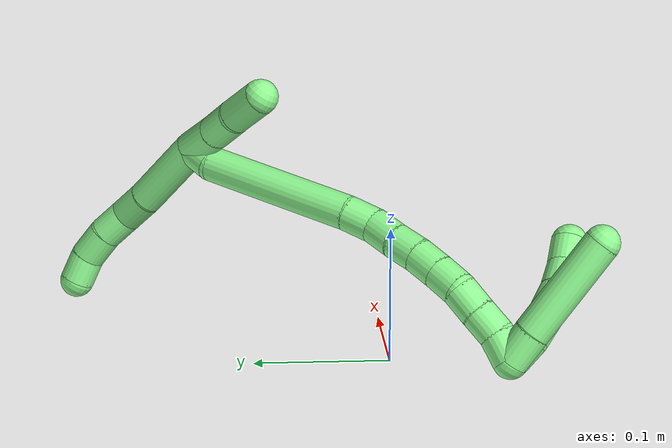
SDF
<sdf version="1.7">
 <world name="default">
  <model name="13">
   <static>0</static>
   <link name="13">
    <collision name="collision-cylinder-e_1_2_8">
     <pose>0.002651 0.008077 0.028337 -0.277677 0.089732 -0.012547</pose>
     <geometry><cylinder><radius>0.0125</radius><length>0.059169</length></cylinder></geometry>
     <surface>
      <friction><ode><mu>1.16</mu><mu2>1.16</mu2><slip1>0</slip1><slip2>0</slip2></ode></friction>
      <contact><ode><kp>1e+06</kp><kd>1</kd><max_vel>0</max_vel><min_depth>0.001</min_depth></ode></contact>
     </surface>
    </collision>
    <visual name="visual-cylinder-e_1_2_8">
     <pose>0.002651 0.008077 0.028337 -0.277677 0.089732 -0.012547</pose>
     <geometry><cylinder><radius>0.0125</radius><length>0.059169</length></cylinder></geometry>
     <material><ambient>0.564706 0.984314 0.572549 1</ambient></material>
    </visual>
    <collision name="collision-cylinder-e_2_8_9">
     <pose>0.0069 0.020777 0.068139 -0.383268 0.128565 -0.024977</pose>
     <geometry><cylinder><radius>0.0125</radius><length>0.02493</length></cylinder></geometry>
     <surface>
      <friction><ode><mu>1.16</mu><mu2>1.16</mu2><slip1>0</slip1><slip2>0</slip2></ode></friction>
      <contact><ode><kp>1e+06</kp><kd>1</kd><max_vel>0</max_vel><min_depth>0.001</min_depth></ode></contact>
     </surface>
    </collision>
    <visual name="visual-cylinder-e_2_8_9">
     <pose>0.0069 0.020777 0.068139 -0.383268 0.128565 -0.024977</pose>
     <geometry><cylinder><radius>0.0125</radius><length>0.02493</length></cylinder></geometry>
     <material><ambient>0.564706 0.984314 0.572549 1</ambient></material>
    </visual>
    <collision name="collision-cylinder-e_3_9_10">
     <pose>0.011029 0.026344 0.090285 -0.088188 0.231703 -0.010269</pose>
     <geometry><cylinder><radius>0.0125</radius><length>0.022036</length></cylinder></geometry>
     <surface>
      <friction><ode><mu>1.16</mu><mu2>1.16</mu2><slip1>0</slip1><slip2>0</slip2></ode></friction>
      <contact><ode><kp>1e+06</kp><kd>1</kd><max_vel>0</max_vel><min_depth>0.001</min_depth></ode></contact>
     </surface>
    </collision>
    <visual name="visual-cylinder-e_3_9_10">
     <pose>0.011029 0.026344 0.090285 -0.088188 0.231703 -0.010269</pose>
     <geometry><cylinder><radius>0.0125</radius><length>0.022036</length></cylinder></geometry>
     <material><ambient>0.564706 0.984314 0.572549 1</ambient></material>
    </visual>
    <collision name="collision-cylinder-e_4_10_11">
     <pose>0.014312 0.028295 0.112692 -0.085619 0.063923 -0.002739</pose>
     <geometry><cylinder><radius>0.0125</radius><length>0.023584</length></cylinder></geometry>
     <surface>
      <friction><ode><mu>1.16</mu><mu2>1.16</mu2><slip1>0</slip1><slip2>0</slip2></ode></friction>
      <contact><ode><kp>1e+06</kp><kd>1</kd><max_vel>0</max_vel><min_depth>0.001</min_depth></ode></contact>
     </surface>
    </collision>
    <visual name="visual-cylinder-e_4_10_11">
     <pose>0.014312 0.028295 0.112692 -0.085619 0.063923 -0.002739</pose>
     <geometry><cylinder><radius>0.0125</radius><length>0.023584</length></cylinder></geometry>
     <material><ambient>0.564706 0.984314 0.572549 1</ambient></material>
    </visual>
    <collision name="collision-cylinder-e_5_11_6">
     <pose>0.013706 0.02782 0.134356 0.147911 -0.134461 -0.009977</pose>
     <geometry><cylinder><radius>0.0125</radius><length>0.020281</length></cylinder></geometry>
     <surface>
      <friction><ode><mu>1.16</mu><mu2>1.16</mu2><slip1>0</slip1><slip2>0</slip2></ode></friction>
      <contact><ode><kp>1e+06</kp><kd>1</kd><max_vel>0</max_vel><min_depth>0.001</min_depth></ode></contact>
     </surface>
    </collision>
    <visual name="visual-cylinder-e_5_11_6">
     <pose>0.013706 0.02782 0.134356 0.147911 -0.134461 -0.009977</pose>
     <geometry><cylinder><radius>0.0125</radius><length>0.020281</length></cylinder></geometry>
     <material><ambient>0.564706 0.984314 0.572549 1</ambient></material>
    </visual>
    <collision name="collision-cylinder-e_1_2_12">
     <pose>-0.001047 -0.012938 -0.014124 2.39999 -0.054601 -0.140245</pose>
     <geometry><cylinder><radius>0.0125</radius><length>0.038366</length></cylinder></geometry>
     <surface>
      <friction><ode><mu>1.16</mu><mu2>1.16</mu2><slip1>0</slip1><slip2>0</slip2></ode></friction>
      <contact><ode><kp>1e+06</kp><kd>1</kd><max_vel>0</max_vel><min_depth>0.001</min_depth></ode></contact>
     </surface>
    </collision>
    <visual name="visual-cylinder-e_1_2_12">
     <pose>-0.001047 -0.012938 -0.014124 2.39999 -0.054601 -0.140245</pose>
     <geometry><cylinder><radius>0.0125</radius><length>0.038366</length></cylinder></geometry>
     <material><ambient>0.564706 0.984314 0.572549 1</ambient></material>
    </visual>
    <collision name="collision-cylinder-e_2_12_13">
     <pose>-0.002543 -0.036101 -0.039812 2.41755 -0.029068 -0.076721</pose>
     <geometry><cylinder><radius>0.0125</radius><length>0.030884</length></cylinder></geometry>
     <surface>
      <friction><ode><mu>1.16</mu><mu2>1.16</mu2><slip1>0</slip1><slip2>0</slip2></ode></friction>
      <contact><ode><kp>1e+06</kp><kd>1</kd><max_vel>0</max_vel><min_depth>0.001</min_depth></ode></contact>
     </surface>
    </collision>
    <visual name="visual-cylinder-e_2_12_13">
     <pose>-0.002543 -0.036101 -0.039812 2.41755 -0.029068 -0.076721</pose>
     <geometry><cylinder><radius>0.0125</radius><length>0.030884</length></cylinder></geometry>
     <material><ambient>0.564706 0.984314 0.572549 1</ambient></material>
    </visual>
    <collision name="collision-cylinder-e_3_13_5">
     <pose>-0.005058 -0.054106 -0.064474 2.60562 -0.134851 -0.482278</pose>
     <geometry><cylinder><radius>0.0125</radius><length>0.03075</length></cylinder></geometry>
     <surface>
      <friction><ode><mu>1.16</mu><mu2>1.16</mu2><slip1>0</slip1><slip2>0</slip2></ode></friction>
      <contact><ode><kp>1e+06</kp><kd>1</kd><max_vel>0</max_vel><min_depth>0.001</min_depth></ode></contact>
     </surface>
    </collision>
    <visual name="visual-cylinder-e_3_13_5">
     <pose>-0.005058 -0.054106 -0.064474 2.60562 -0.134851 -0.482278</pose>
     <geometry><cylinder><radius>0.0125</radius><length>0.03075</length></cylinder></geometry>
     <material><ambient>0.564706 0.984314 0.572549 1</ambient></material>
    </visual>
    <collision name="collision-cylinder-e_1_2_14">
     <pose>-0.007439 -0.008428 -0.001411 1.73673 -0.716341 -0.832727</pose>
     <geometry><cylinder><radius>0.0125</radius><length>0.02266</length></cylinder></geometry>
     <surface>
      <friction><ode><mu>1.16</mu><mu2>1.16</mu2><slip1>0</slip1><slip2>0</slip2></ode></friction>
      <contact><ode><kp>1e+06</kp><kd>1</kd><max_vel>0</max_vel><min_depth>0.001</min_depth></ode></contact>
     </surface>
    </collision>
    <visual name="visual-cylinder-e_1_2_14">
     <pose>-0.007439 -0.008428 -0.001411 1.73673 -0.716341 -0.832727</pose>
     <geometry><cylinder><radius>0.0125</radius><length>0.02266</length></cylinder></geometry>
     <material><ambient>0.564706 0.984314 0.572549 1</ambient></material>
    </visual>
    <collision name="collision-cylinder-e_2_14_15">
     <pose>-0.05781 -0.047879 -0.022508 2.13621 -0.862933 -1.39425</pose>
     <geometry><cylinder><radius>0.0125</radius><length>0.113013</length></cylinder></geometry>
     <surface>
      <friction><ode><mu>1.16</mu><mu2>1.16</mu2><slip1>0</slip1><slip2>0</slip2></ode></friction>
      <contact><ode><kp>1e+06</kp><kd>1</kd><max_vel>0</max_vel><min_depth>0.001</min_depth></ode></contact>
     </surface>
    </collision>
    <visual name="visual-cylinder-e_2_14_15">
     <pose>-0.05781 -0.047879 -0.022508 2.13621 -0.862933 -1.39425</pose>
     <geometry><cylinder><radius>0.0125</radius><length>0.113013</length></cylinder></geometry>
     <material><ambient>0.564706 0.984314 0.572549 1</ambient></material>
    </visual>
    <collision name="collision-cylinder-e_3_15_16">
     <pose>-0.109643 -0.084467 -0.044924 2.02716 -0.962472 -1.39505</pose>
     <geometry><cylinder><radius>0.0125</radius><length>0.021697</length></cylinder></geometry>
     <surface>
      <friction><ode><mu>1.16</mu><mu2>1.16</mu2><slip1>0</slip1><slip2>0</slip2></ode></friction>
      <contact><ode><kp>1e+06</kp><kd>1</kd><max_vel>0</max_vel><min_depth>0.001</min_depth></ode></contact>
     </surface>
    </collision>
    <visual name="visual-cylinder-e_3_15_16">
     <pose>-0.109643 -0.084467 -0.044924 2.02716 -0.962472 -1.39505</pose>
     <geometry><cylinder><radius>0.0125</radius><length>0.021697</length></cylinder></geometry>
     <material><ambient>0.564706 0.984314 0.572549 1</ambient></material>
    </visual>
    <collision name="collision-cylinder-e_4_16_17">
     <pose>-0.125507 -0.098329 -0.049428 1.78118 -0.687178 -0.83278</pose>
     <geometry><cylinder><radius>0.0125</radius><length>0.021948</length></cylinder></geometry>
     <surface>
      <friction><ode><mu>1.16</mu><mu2>1.16</mu2><slip1>0</slip1><slip2>0</slip2></ode></friction>
      <contact><ode><kp>1e+06</kp><kd>1</kd><max_vel>0</max_vel><min_depth>0.001</min_depth></ode></contact>
     </surface>
    </collision>
    <visual name="visual-cylinder-e_4_16_17">
     <pose>-0.125507 -0.098329 -0.049428 1.78118 -0.687178 -0.83278</pose>
     <geometry><cylinder><radius>0.0125</radius><length>0.021948</length></cylinder></geometry>
     <material><ambient>0.564706 0.984314 0.572549 1</ambient></material>
    </visual>
    <collision name="collision-cylinder-e_5_17_18">
     <pose>-0.139712 -0.113756 -0.053064 1.82653 -0.776708 -0.974497</pose>
     <geometry><cylinder><radius>0.0125</radius><length>0.020669</length></cylinder></geometry>
     <surface>
      <friction><ode><mu>1.16</mu><mu2>1.16</mu2><slip1>0</slip1><slip2>0</slip2></ode></friction>
      <contact><ode><kp>1e+06</kp><kd>1</kd><max_vel>0</max_vel><min_depth>0.001</min_depth></ode></contact>
     </surface>
    </collision>
    <visual name="visual-cylinder-e_5_17_18">
     <pose>-0.139712 -0.113756 -0.053064 1.82653 -0.776708 -0.974497</pose>
     <geometry><cylinder><radius>0.0125</radius><length>0.020669</length></cylinder></geometry>
     <material><ambient>0.564706 0.984314 0.572549 1</ambient></material>
    </visual>
    <collision name="collision-cylinder-e_6_18_19">
     <pose>-0.15401 -0.127923 -0.055822 1.69706 -0.782638 -0.875908</pose>
     <geometry><cylinder><radius>0.0125</radius><length>0.020006</length></cylinder></geometry>
     <surface>
      <friction><ode><mu>1.16</mu><mu2>1.16</mu2><slip1>0</slip1><slip2>0</slip2></ode></friction>
      <contact><ode><kp>1e+06</kp><kd>1</kd><max_vel>0</max_vel><min_depth>0.001</min_depth></ode></contact>
     </surface>
    </collision>
    <visual name="visual-cylinder-e_6_18_19">
     <pose>-0.15401 -0.127923 -0.055822 1.69706 -0.782638 -0.875908</pose>
     <geometry><cylinder><radius>0.0125</radius><length>0.020006</length></cylinder></geometry>
     <material><ambient>0.564706 0.984314 0.572549 1</ambient></material>
    </visual>
    <collision name="collision-cylinder-e_7_19_20">
     <pose>-0.168009 -0.142131 -0.057336 1.65716 -0.767545 -0.829456</pose>
     <geometry><cylinder><radius>0.0125</radius><length>0.020006</length></cylinder></geometry>
     <surface>
      <friction><ode><mu>1.16</mu><mu2>1.16</mu2><slip1>0</slip1><slip2>0</slip2></ode></friction>
      <contact><ode><kp>1e+06</kp><kd>1</kd><max_vel>0</max_vel><min_depth>0.001</min_depth></ode></contact>
     </surface>
    </collision>
    <visual name="visual-cylinder-e_7_19_20">
     <pose>-0.168009 -0.142131 -0.057336 1.65716 -0.767545 -0.829456</pose>
     <geometry><cylinder><radius>0.0125</radius><length>0.020006</length></cylinder></geometry>
     <material><ambient>0.564706 0.984314 0.572549 1</ambient></material>
    </visual>
    <collision name="collision-cylinder-e_8_20_21">
     <pose>-0.18318 -0.15467 -0.056073 1.23331 -0.965742 -0.711634</pose>
     <geometry><cylinder><radius>0.0125</radius><length>0.020001</length></cylinder></geometry>
     <surface>
      <friction><ode><mu>1.16</mu><mu2>1.16</mu2><slip1>0</slip1><slip2>0</slip2></ode></friction>
      <contact><ode><kp>1e+06</kp><kd>1</kd><max_vel>0</max_vel><min_depth>0.001</min_depth></ode></contact>
     </surface>
    </collision>
    <visual name="visual-cylinder-e_8_20_21">
     <pose>-0.18318 -0.15467 -0.056073 1.23331 -0.965742 -0.711634</pose>
     <geometry><cylinder><radius>0.0125</radius><length>0.020001</length></cylinder></geometry>
     <material><ambient>0.564706 0.984314 0.572549 1</ambient></material>
    </visual>
    <collision name="collision-cylinder-e_9_21_22">
     <pose>-0.199916 -0.164953 -0.052345 1.21171 -1.01798 -0.737778</pose>
     <geometry><cylinder><radius>0.0125</radius><length>0.02</length></cylinder></geometry>
     <surface>
      <friction><ode><mu>1.16</mu><mu2>1.16</mu2><slip1>0</slip1><slip2>0</slip2></ode></friction>
      <contact><ode><kp>1e+06</kp><kd>1</kd><max_vel>0</max_vel><min_depth>0.001</min_depth></ode></contact>
     </surface>
    </collision>
    <visual name="visual-cylinder-e_9_21_22">
     <pose>-0.199916 -0.164953 -0.052345 1.21171 -1.01798 -0.737778</pose>
     <geometry><cylinder><radius>0.0125</radius><length>0.02</length></cylinder></geometry>
     <material><ambient>0.564706 0.984314 0.572549 1</ambient></material>
    </visual>
    <collision name="collision-cylinder-e_10_22_1">
     <pose>-0.215734 -0.175602 -0.046794 0.997061 -0.819476 -0.464356</pose>
     <geometry><cylinder><radius>0.0125</radius><length>0.02</length></cylinder></geometry>
     <surface>
      <friction><ode><mu>1.16</mu><mu2>1.16</mu2><slip1>0</slip1><slip2>0</slip2></ode></friction>
      <contact><ode><kp>1e+06</kp><kd>1</kd><max_vel>0</max_vel><min_depth>0.001</min_depth></ode></contact>
     </surface>
    </collision>
    <visual name="visual-cylinder-e_10_22_1">
     <pose>-0.215734 -0.175602 -0.046794 0.997061 -0.819476 -0.464356</pose>
     <geometry><cylinder><radius>0.0125</radius><length>0.02</length></cylinder></geometry>
     <material><ambient>0.564706 0.984314 0.572549 1</ambient></material>
    </visual>
    <collision name="collision-cylinder-e_1_1_23">
     <pose>-0.223469 -0.180282 -0.055096 -3.05403 -0.03538 0.767627</pose>
     <geometry><cylinder><radius>0.0125</radius><length>0.02412</length></cylinder></geometry>
     <surface>
      <friction><ode><mu>1.16</mu><mu2>1.16</mu2><slip1>0</slip1><slip2>0</slip2></ode></friction>
      <contact><ode><kp>1e+06</kp><kd>1</kd><max_vel>0</max_vel><min_depth>0.001</min_depth></ode></contact>
     </surface>
    </collision>
    <visual name="visual-cylinder-e_1_1_23">
     <pose>-0.223469 -0.180282 -0.055096 -3.05403 -0.03538 0.767627</pose>
     <geometry><cylinder><radius>0.0125</radius><length>0.02412</length></cylinder></geometry>
     <material><ambient>0.564706 0.984314 0.572549 1</ambient></material>
    </visual>
    <collision name="collision-cylinder-e_2_23_4">
     <pose>-0.226958 -0.174166 -0.104578 -3.00734 -0.080807 1.08278</pose>
     <geometry><cylinder><radius>0.0125</radius><length>0.07588</length></cylinder></geometry>
     <surface>
      <friction><ode><mu>1.16</mu><mu2>1.16</mu2><slip1>0</slip1><slip2>0</slip2></ode></friction>
      <contact><ode><kp>1e+06</kp><kd>1</kd><max_vel>0</max_vel><min_depth>0.001</min_depth></ode></contact>
     </surface>
    </collision>
    <visual name="visual-cylinder-e_2_23_4">
     <pose>-0.226958 -0.174166 -0.104578 -3.00734 -0.080807 1.08278</pose>
     <geometry><cylinder><radius>0.0125</radius><length>0.07588</length></cylinder></geometry>
     <material><ambient>0.564706 0.984314 0.572549 1</ambient></material>
    </visual>
    <collision name="collision-cylinder-e_1_1_24">
     <pose>-0.22522 -0.178379 -0.052391 -2.8338 -0.219472 1.23517</pose>
     <geometry><cylinder><radius>0.0125</radius><length>0.02</length></cylinder></geometry>
     <surface>
      <friction><ode><mu>1.16</mu><mu2>1.16</mu2><slip1>0</slip1><slip2>0</slip2></ode></friction>
      <contact><ode><kp>1e+06</kp><kd>1</kd><max_vel>0</max_vel><min_depth>0.001</min_depth></ode></contact>
     </surface>
    </collision>
    <visual name="visual-cylinder-e_1_1_24">
     <pose>-0.22522 -0.178379 -0.052391 -2.8338 -0.219472 1.23517</pose>
     <geometry><cylinder><radius>0.0125</radius><length>0.02</length></cylinder></geometry>
     <material><ambient>0.564706 0.984314 0.572549 1</ambient></material>
    </visual>
    <collision name="collision-cylinder-e_2_24_25">
     <pose>-0.228884 -0.169689 -0.069749 -2.52316 -0.149317 0.45998</pose>
     <geometry><cylinder><radius>0.0125</radius><length>0.02</length></cylinder></geometry>
     <surface>
      <friction><ode><mu>1.16</mu><mu2>1.16</mu2><slip1>0</slip1><slip2>0</slip2></ode></friction>
      <contact><ode><kp>1e+06</kp><kd>1</kd><max_vel>0</max_vel><min_depth>0.001</min_depth></ode></contact>
     </surface>
    </collision>
    <visual name="visual-cylinder-e_2_24_25">
     <pose>-0.228884 -0.169689 -0.069749 -2.52316 -0.149317 0.45998</pose>
     <geometry><cylinder><radius>0.0125</radius><length>0.02</length></cylinder></geometry>
     <material><ambient>0.564706 0.984314 0.572549 1</ambient></material>
    </visual>
    <collision name="collision-cylinder-e_3_25_26">
     <pose>-0.230964 -0.15775 -0.085626 -2.47077 -0.059255 0.16963</pose>
     <geometry><cylinder><radius>0.0125</radius><length>0.02</length></cylinder></geometry>
     <surface>
      <friction><ode><mu>1.16</mu><mu2>1.16</mu2><slip1>0</slip1><slip2>0</slip2></ode></friction>
      <contact><ode><kp>1e+06</kp><kd>1</kd><max_vel>0</max_vel><min_depth>0.001</min_depth></ode></contact>
     </surface>
    </collision>
    <visual name="visual-cylinder-e_3_25_26">
     <pose>-0.230964 -0.15775 -0.085626 -2.47077 -0.059255 0.16963</pose>
     <geometry><cylinder><radius>0.0125</radius><length>0.02</length></cylinder></geometry>
     <material><ambient>0.564706 0.984314 0.572549 1</ambient></material>
    </visual>
    <collision name="collision-cylinder-e_4_26_27">
     <pose>-0.231889 -0.143214 -0.098967 -2.15618 -0.033274 0.061964</pose>
     <geometry><cylinder><radius>0.0125</radius><length>0.02</length></cylinder></geometry>
     <surface>
      <friction><ode><mu>1.16</mu><mu2>1.16</mu2><slip1>0</slip1><slip2>0</slip2></ode></friction>
      <contact><ode><kp>1e+06</kp><kd>1</kd><max_vel>0</max_vel><min_depth>0.001</min_depth></ode></contact>
     </surface>
    </collision>
    <visual name="visual-cylinder-e_4_26_27">
     <pose>-0.231889 -0.143214 -0.098967 -2.15618 -0.033274 0.061964</pose>
     <geometry><cylinder><radius>0.0125</radius><length>0.02</length></cylinder></geometry>
     <material><ambient>0.564706 0.984314 0.572549 1</ambient></material>
    </visual>
    <collision name="collision-cylinder-e_5_27_3">
     <pose>-0.231029 -0.127075 -0.110621 -2.23644 0.119555 -0.244939</pose>
     <geometry><cylinder><radius>0.0125</radius><length>0.02</length></cylinder></geometry>
     <surface>
      <friction><ode><mu>1.16</mu><mu2>1.16</mu2><slip1>0</slip1><slip2>0</slip2></ode></friction>
      <contact><ode><kp>1e+06</kp><kd>1</kd><max_vel>0</max_vel><min_depth>0.001</min_depth></ode></contact>
     </surface>
    </collision>
    <visual name="visual-cylinder-e_5_27_3">
     <pose>-0.231029 -0.127075 -0.110621 -2.23644 0.119555 -0.244939</pose>
     <geometry><cylinder><radius>0.0125</radius><length>0.02</length></cylinder></geometry>
     <material><ambient>0.564706 0.984314 0.572549 1</ambient></material>
    </visual>
    <collision name="collision-sphere-3">
     <pose>-0.229836 -0.119266 -0.116753 0 -0 0</pose>
     <geometry><sphere><radius>0.0125</radius></sphere></geometry>
     <surface>
      <friction><ode><mu>1.16</mu><mu2>1.16</mu2><slip1>0</slip1><slip2>0</slip2></ode></friction>
      <contact><ode><kp>1e+06</kp><kd>1</kd><max_vel>0</max_vel><min_depth>0.001</min_depth></ode></contact>
     </surface>
    </collision>
    <visual name="visual-sphere-3">
     <pose>-0.229836 -0.119266 -0.116753 0 -0 0</pose>
     <geometry><sphere><radius>0.0125</radius></sphere></geometry>
     <material><ambient>0.564706 0.984314 0.572549 1</ambient></material>
    </visual>
    <collision name="collision-sphere-27">
     <pose>-0.232222 -0.134884 -0.104489 0 -0 0</pose>
     <geometry><sphere><radius>0.0125</radius></sphere></geometry>
     <surface>
      <friction><ode><mu>1.16</mu><mu2>1.16</mu2><slip1>0</slip1><slip2>0</slip2></ode></friction>
      <contact><ode><kp>1e+06</kp><kd>1</kd><max_vel>0</max_vel><min_depth>0.001</min_depth></ode></contact>
     </surface>
    </collision>
    <visual name="visual-sphere-27">
     <pose>-0.232222 -0.134884 -0.104489 0 -0 0</pose>
     <geometry><sphere><radius>0.0125</radius></sphere></geometry>
     <material><ambient>0.564706 0.984314 0.572549 1</ambient></material>
    </visual>
    <collision name="collision-sphere-26">
     <pose>-0.231556 -0.151545 -0.093445 0 -0 0</pose>
     <geometry><sphere><radius>0.0125</radius></sphere></geometry>
     <surface>
      <friction><ode><mu>1.16</mu><mu2>1.16</mu2><slip1>0</slip1><slip2>0</slip2></ode></friction>
      <contact><ode><kp>1e+06</kp><kd>1</kd><max_vel>0</max_vel><min_depth>0.001</min_depth></ode></contact>
     </surface>
    </collision>
    <visual name="visual-sphere-26">
     <pose>-0.231556 -0.151545 -0.093445 0 -0 0</pose>
     <geometry><sphere><radius>0.0125</radius></sphere></geometry>
     <material><ambient>0.564706 0.984314 0.572549 1</ambient></material>
    </visual>
    <collision name="collision-sphere-25">
     <pose>-0.230372 -0.163956 -0.077807 0 -0 0</pose>
     <geometry><sphere><radius>0.0125</radius></sphere></geometry>
     <surface>
      <friction><ode><mu>1.16</mu><mu2>1.16</mu2><slip1>0</slip1><slip2>0</slip2></ode></friction>
      <contact><ode><kp>1e+06</kp><kd>1</kd><max_vel>0</max_vel><min_depth>0.001</min_depth></ode></contact>
     </surface>
    </collision>
    <visual name="visual-sphere-25">
     <pose>-0.230372 -0.163956 -0.077807 0 -0 0</pose>
     <geometry><sphere><radius>0.0125</radius></sphere></geometry>
     <material><ambient>0.564706 0.984314 0.572549 1</ambient></material>
    </visual>
    <collision name="collision-sphere-24">
     <pose>-0.227397 -0.175422 -0.061692 0 -0 0</pose>
     <geometry><sphere><radius>0.0125</radius></sphere></geometry>
     <surface>
      <friction><ode><mu>1.16</mu><mu2>1.16</mu2><slip1>0</slip1><slip2>0</slip2></ode></friction>
      <contact><ode><kp>1e+06</kp><kd>1</kd><max_vel>0</max_vel><min_depth>0.001</min_depth></ode></contact>
     </surface>
    </collision>
    <visual name="visual-sphere-24">
     <pose>-0.227397 -0.175422 -0.061692 0 -0 0</pose>
     <geometry><sphere><radius>0.0125</radius></sphere></geometry>
     <material><ambient>0.564706 0.984314 0.572549 1</ambient></material>
    </visual>
    <collision name="collision-sphere-4">
     <pose>-0.230021 -0.169104 -0.142054 0 -0 0</pose>
     <geometry><sphere><radius>0.0125</radius></sphere></geometry>
     <surface>
      <friction><ode><mu>1.16</mu><mu2>1.16</mu2><slip1>0</slip1><slip2>0</slip2></ode></friction>
      <contact><ode><kp>1e+06</kp><kd>1</kd><max_vel>0</max_vel><min_depth>0.001</min_depth></ode></contact>
     </surface>
    </collision>
    <visual name="visual-sphere-4">
     <pose>-0.230021 -0.169104 -0.142054 0 -0 0</pose>
     <geometry><sphere><radius>0.0125</radius></sphere></geometry>
     <material><ambient>0.564706 0.984314 0.572549 1</ambient></material>
    </visual>
    <collision name="collision-sphere-23">
     <pose>-0.223896 -0.179228 -0.067102 0 -0 0</pose>
     <geometry><sphere><radius>0.0125</radius></sphere></geometry>
     <surface>
      <friction><ode><mu>1.16</mu><mu2>1.16</mu2><slip1>0</slip1><slip2>0</slip2></ode></friction>
      <contact><ode><kp>1e+06</kp><kd>1</kd><max_vel>0</max_vel><min_depth>0.001</min_depth></ode></contact>
     </surface>
    </collision>
    <visual name="visual-sphere-23">
     <pose>-0.223896 -0.179228 -0.067102 0 -0 0</pose>
     <geometry><sphere><radius>0.0125</radius></sphere></geometry>
     <material><ambient>0.564706 0.984314 0.572549 1</ambient></material>
    </visual>
    <collision name="collision-sphere-1">
     <pose>-0.223042 -0.181335 -0.043089 0 -0 0</pose>
     <geometry><sphere><radius>0.0125</radius></sphere></geometry>
     <surface>
      <friction><ode><mu>1.16</mu><mu2>1.16</mu2><slip1>0</slip1><slip2>0</slip2></ode></friction>
      <contact><ode><kp>1e+06</kp><kd>1</kd><max_vel>0</max_vel><min_depth>0.001</min_depth></ode></contact>
     </surface>
    </collision>
    <visual name="visual-sphere-1">
     <pose>-0.223042 -0.181335 -0.043089 0 -0 0</pose>
     <geometry><sphere><radius>0.0125</radius></sphere></geometry>
     <material><ambient>0.564706 0.984314 0.572549 1</ambient></material>
    </visual>
    <collision name="collision-sphere-22">
     <pose>-0.208427 -0.169869 -0.050499 0 -0 0</pose>
     <geometry><sphere><radius>0.0125</radius></sphere></geometry>
     <surface>
      <friction><ode><mu>1.16</mu><mu2>1.16</mu2><slip1>0</slip1><slip2>0</slip2></ode></friction>
      <contact><ode><kp>1e+06</kp><kd>1</kd><max_vel>0</max_vel><min_depth>0.001</min_depth></ode></contact>
     </surface>
    </collision>
    <visual name="visual-sphere-22">
     <pose>-0.208427 -0.169869 -0.050499 0 -0 0</pose>
     <geometry><sphere><radius>0.0125</radius></sphere></geometry>
     <material><ambient>0.564706 0.984314 0.572549 1</ambient></material>
    </visual>
    <collision name="collision-sphere-21">
     <pose>-0.191406 -0.160037 -0.05419 0 -0 0</pose>
     <geometry><sphere><radius>0.0125</radius></sphere></geometry>
     <surface>
      <friction><ode><mu>1.16</mu><mu2>1.16</mu2><slip1>0</slip1><slip2>0</slip2></ode></friction>
      <contact><ode><kp>1e+06</kp><kd>1</kd><max_vel>0</max_vel><min_depth>0.001</min_depth></ode></contact>
     </surface>
    </collision>
    <visual name="visual-sphere-21">
     <pose>-0.191406 -0.160037 -0.05419 0 -0 0</pose>
     <geometry><sphere><radius>0.0125</radius></sphere></geometry>
     <material><ambient>0.564706 0.984314 0.572549 1</ambient></material>
    </visual>
    <collision name="collision-sphere-6">
     <pose>0.012346 0.02634 0.144296 0 -0 0</pose>
     <geometry><sphere><radius>0.0125</radius></sphere></geometry>
     <surface>
      <friction><ode><mu>1.16</mu><mu2>1.16</mu2><slip1>0</slip1><slip2>0</slip2></ode></friction>
      <contact><ode><kp>1e+06</kp><kd>1</kd><max_vel>0</max_vel><min_depth>0.001</min_depth></ode></contact>
     </surface>
    </collision>
    <visual name="visual-sphere-6">
     <pose>0.012346 0.02634 0.144296 0 -0 0</pose>
     <geometry><sphere><radius>0.0125</radius></sphere></geometry>
     <material><ambient>0.564706 0.984314 0.572549 1</ambient></material>
    </visual>
    <collision name="collision-sphere-11">
     <pose>0.015065 0.029301 0.124417 0 -0 0</pose>
     <geometry><sphere><radius>0.0125</radius></sphere></geometry>
     <surface>
      <friction><ode><mu>1.16</mu><mu2>1.16</mu2><slip1>0</slip1><slip2>0</slip2></ode></friction>
      <contact><ode><kp>1e+06</kp><kd>1</kd><max_vel>0</max_vel><min_depth>0.001</min_depth></ode></contact>
     </surface>
    </collision>
    <visual name="visual-sphere-11">
     <pose>0.015065 0.029301 0.124417 0 -0 0</pose>
     <geometry><sphere><radius>0.0125</radius></sphere></geometry>
     <material><ambient>0.564706 0.984314 0.572549 1</ambient></material>
    </visual>
    <collision name="collision-sphere-10">
     <pose>0.013559 0.027289 0.100967 0 -0 0</pose>
     <geometry><sphere><radius>0.0125</radius></sphere></geometry>
     <surface>
      <friction><ode><mu>1.16</mu><mu2>1.16</mu2><slip1>0</slip1><slip2>0</slip2></ode></friction>
      <contact><ode><kp>1e+06</kp><kd>1</kd><max_vel>0</max_vel><min_depth>0.001</min_depth></ode></contact>
     </surface>
    </collision>
    <visual name="visual-sphere-10">
     <pose>0.013559 0.027289 0.100967 0 -0 0</pose>
     <geometry><sphere><radius>0.0125</radius></sphere></geometry>
     <material><ambient>0.564706 0.984314 0.572549 1</ambient></material>
    </visual>
    <collision name="collision-sphere-9">
     <pose>0.008498 0.0254 0.079604 0 -0 0</pose>
     <geometry><sphere><radius>0.0125</radius></sphere></geometry>
     <surface>
      <friction><ode><mu>1.16</mu><mu2>1.16</mu2><slip1>0</slip1><slip2>0</slip2></ode></friction>
      <contact><ode><kp>1e+06</kp><kd>1</kd><max_vel>0</max_vel><min_depth>0.001</min_depth></ode></contact>
     </surface>
    </collision>
    <visual name="visual-sphere-9">
     <pose>0.008498 0.0254 0.079604 0 -0 0</pose>
     <geometry><sphere><radius>0.0125</radius></sphere></geometry>
     <material><ambient>0.564706 0.984314 0.572549 1</ambient></material>
    </visual>
    <collision name="collision-sphere-2">
     <geometry><sphere><radius>0.0125</radius></sphere></geometry>
     <surface>
      <friction><ode><mu>1.16</mu><mu2>1.16</mu2><slip1>0</slip1><slip2>0</slip2></ode></friction>
      <contact><ode><kp>1e+06</kp><kd>1</kd><max_vel>0</max_vel><min_depth>0.001</min_depth></ode></contact>
     </surface>
    </collision>
    <visual name="visual-sphere-2">
     <geometry><sphere><radius>0.0125</radius></sphere></geometry>
     <material><ambient>0.564706 0.984314 0.572549 1</ambient></material>
    </visual>
    <collision name="collision-sphere-19">
     <pose>-0.161063 -0.134959 -0.056715 0 -0 0</pose>
     <geometry><sphere><radius>0.0125</radius></sphere></geometry>
     <surface>
      <friction><ode><mu>1.16</mu><mu2>1.16</mu2><slip1>0</slip1><slip2>0</slip2></ode></friction>
      <contact><ode><kp>1e+06</kp><kd>1</kd><max_vel>0</max_vel><min_depth>0.001</min_depth></ode></contact>
     </surface>
    </collision>
    <visual name="visual-sphere-19">
     <pose>-0.161063 -0.134959 -0.056715 0 -0 0</pose>
     <geometry><sphere><radius>0.0125</radius></sphere></geometry>
     <material><ambient>0.564706 0.984314 0.572549 1</ambient></material>
    </visual>
    <collision name="collision-sphere-8">
     <pose>0.005302 0.016154 0.056674 0 -0 0</pose>
     <geometry><sphere><radius>0.0125</radius></sphere></geometry>
     <surface>
      <friction><ode><mu>1.16</mu><mu2>1.16</mu2><slip1>0</slip1><slip2>0</slip2></ode></friction>
      <contact><ode><kp>1e+06</kp><kd>1</kd><max_vel>0</max_vel><min_depth>0.001</min_depth></ode></contact>
     </surface>
    </collision>
    <visual name="visual-sphere-8">
     <pose>0.005302 0.016154 0.056674 0 -0 0</pose>
     <geometry><sphere><radius>0.0125</radius></sphere></geometry>
     <material><ambient>0.564706 0.984314 0.572549 1</ambient></material>
    </visual>
    <collision name="collision-sphere-12">
     <pose>-0.002094 -0.025877 -0.028249 0 -0 0</pose>
     <geometry><sphere><radius>0.0125</radius></sphere></geometry>
     <surface>
      <friction><ode><mu>1.16</mu><mu2>1.16</mu2><slip1>0</slip1><slip2>0</slip2></ode></friction>
      <contact><ode><kp>1e+06</kp><kd>1</kd><max_vel>0</max_vel><min_depth>0.001</min_depth></ode></contact>
     </surface>
    </collision>
    <visual name="visual-sphere-12">
     <pose>-0.002094 -0.025877 -0.028249 0 -0 0</pose>
     <geometry><sphere><radius>0.0125</radius></sphere></geometry>
     <material><ambient>0.564706 0.984314 0.572549 1</ambient></material>
    </visual>
    <collision name="collision-sphere-13">
     <pose>-0.002991 -0.046326 -0.051375 0 -0 0</pose>
     <geometry><sphere><radius>0.0125</radius></sphere></geometry>
     <surface>
      <friction><ode><mu>1.16</mu><mu2>1.16</mu2><slip1>0</slip1><slip2>0</slip2></ode></friction>
      <contact><ode><kp>1e+06</kp><kd>1</kd><max_vel>0</max_vel><min_depth>0.001</min_depth></ode></contact>
     </surface>
    </collision>
    <visual name="visual-sphere-13">
     <pose>-0.002991 -0.046326 -0.051375 0 -0 0</pose>
     <geometry><sphere><radius>0.0125</radius></sphere></geometry>
     <material><ambient>0.564706 0.984314 0.572549 1</ambient></material>
    </visual>
    <collision name="collision-sphere-5">
     <pose>-0.007126 -0.061887 -0.077573 0 -0 0</pose>
     <geometry><sphere><radius>0.0125</radius></sphere></geometry>
     <surface>
      <friction><ode><mu>1.16</mu><mu2>1.16</mu2><slip1>0</slip1><slip2>0</slip2></ode></friction>
      <contact><ode><kp>1e+06</kp><kd>1</kd><max_vel>0</max_vel><min_depth>0.001</min_depth></ode></contact>
     </surface>
    </collision>
    <visual name="visual-sphere-5">
     <pose>-0.007126 -0.061887 -0.077573 0 -0 0</pose>
     <geometry><sphere><radius>0.0125</radius></sphere></geometry>
     <material><ambient>0.564706 0.984314 0.572549 1</ambient></material>
    </visual>
    <collision name="collision-sphere-14">
     <pose>-0.014879 -0.016855 -0.002823 0 -0 0</pose>
     <geometry><sphere><radius>0.0125</radius></sphere></geometry>
     <surface>
      <friction><ode><mu>1.16</mu><mu2>1.16</mu2><slip1>0</slip1><slip2>0</slip2></ode></friction>
      <contact><ode><kp>1e+06</kp><kd>1</kd><max_vel>0</max_vel><min_depth>0.001</min_depth></ode></contact>
     </surface>
    </collision>
    <visual name="visual-sphere-14">
     <pose>-0.014879 -0.016855 -0.002823 0 -0 0</pose>
     <geometry><sphere><radius>0.0125</radius></sphere></geometry>
     <material><ambient>0.564706 0.984314 0.572549 1</ambient></material>
    </visual>
    <collision name="collision-sphere-15">
     <pose>-0.100741 -0.078902 -0.042192 0 -0 0</pose>
     <geometry><sphere><radius>0.0125</radius></sphere></geometry>
     <surface>
      <friction><ode><mu>1.16</mu><mu2>1.16</mu2><slip1>0</slip1><slip2>0</slip2></ode></friction>
      <contact><ode><kp>1e+06</kp><kd>1</kd><max_vel>0</max_vel><min_depth>0.001</min_depth></ode></contact>
     </surface>
    </collision>
    <visual name="visual-sphere-15">
     <pose>-0.100741 -0.078902 -0.042192 0 -0 0</pose>
     <geometry><sphere><radius>0.0125</radius></sphere></geometry>
     <material><ambient>0.564706 0.984314 0.572549 1</ambient></material>
    </visual>
    <collision name="collision-sphere-16">
     <pose>-0.118546 -0.090032 -0.047657 0 -0 0</pose>
     <geometry><sphere><radius>0.0125</radius></sphere></geometry>
     <surface>
      <friction><ode><mu>1.16</mu><mu2>1.16</mu2><slip1>0</slip1><slip2>0</slip2></ode></friction>
      <contact><ode><kp>1e+06</kp><kd>1</kd><max_vel>0</max_vel><min_depth>0.001</min_depth></ode></contact>
     </surface>
    </collision>
    <visual name="visual-sphere-16">
     <pose>-0.118546 -0.090032 -0.047657 0 -0 0</pose>
     <geometry><sphere><radius>0.0125</radius></sphere></geometry>
     <material><ambient>0.564706 0.984314 0.572549 1</ambient></material>
    </visual>
    <collision name="collision-sphere-17">
     <pose>-0.132469 -0.106625 -0.0512 0 -0 0</pose>
     <geometry><sphere><radius>0.0125</radius></sphere></geometry>
     <surface>
      <friction><ode><mu>1.16</mu><mu2>1.16</mu2><slip1>0</slip1><slip2>0</slip2></ode></friction>
      <contact><ode><kp>1e+06</kp><kd>1</kd><max_vel>0</max_vel><min_depth>0.001</min_depth></ode></contact>
     </surface>
    </collision>
    <visual name="visual-sphere-17">
     <pose>-0.132469 -0.106625 -0.0512 0 -0 0</pose>
     <geometry><sphere><radius>0.0125</radius></sphere></geometry>
     <material><ambient>0.564706 0.984314 0.572549 1</ambient></material>
    </visual>
    <collision name="collision-sphere-18">
     <pose>-0.146956 -0.120887 -0.054929 0 -0 0</pose>
     <geometry><sphere><radius>0.0125</radius></sphere></geometry>
     <surface>
      <friction><ode><mu>1.16</mu><mu2>1.16</mu2><slip1>0</slip1><slip2>0</slip2></ode></friction>
      <contact><ode><kp>1e+06</kp><kd>1</kd><max_vel>0</max_vel><min_depth>0.001</min_depth></ode></contact>
     </surface>
    </collision>
    <visual name="visual-sphere-18">
     <pose>-0.146956 -0.120887 -0.054929 0 -0 0</pose>
     <geometry><sphere><radius>0.0125</radius></sphere></geometry>
     <material><ambient>0.564706 0.984314 0.572549 1</ambient></material>
    </visual>
    <collision name="collision-sphere-20">
     <pose>-0.174955 -0.149302 -0.057957 0 -0 0</pose>
     <geometry><sphere><radius>0.0125</radius></sphere></geometry>
     <surface>
      <friction><ode><mu>1.16</mu><mu2>1.16</mu2><slip1>0</slip1><slip2>0</slip2></ode></friction>
      <contact><ode><kp>1e+06</kp><kd>1</kd><max_vel>0</max_vel><min_depth>0.001</min_depth></ode></contact>
     </surface>
    </collision>
    <visual name="visual-sphere-20">
     <pose>-0.174955 -0.149302 -0.057957 0 -0 0</pose>
     <geometry><sphere><radius>0.0125</radius></sphere></geometry>
     <material><ambient>0.564706 0.984314 0.572549 1</ambient></material>
    </visual>
    <inertial>
     <pose>-0.103734 -0.081073 -0.028957 0 -0 0</pose>
     <mass>0.75</mass>
     <inertia><ixx>1.6e-05</ixx><ixy>0</ixy><ixz>0</ixz><iyy>4e-06</iyy><iyz>0</iyz><izz>0.000165</izz></inertia>
    </inertial>
   </link>
   <pose>0.022421 0.141468 0.157067 2.9896 -0.561497 1.6334</pose>
  </model>
 </world>
</sdf>
